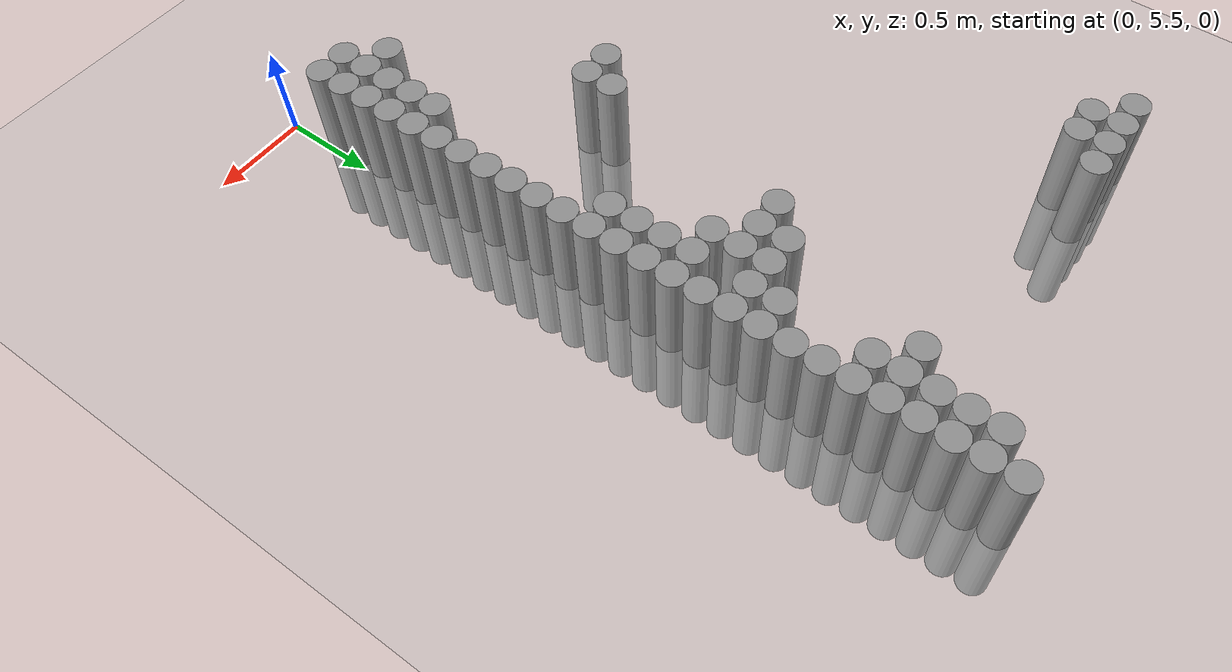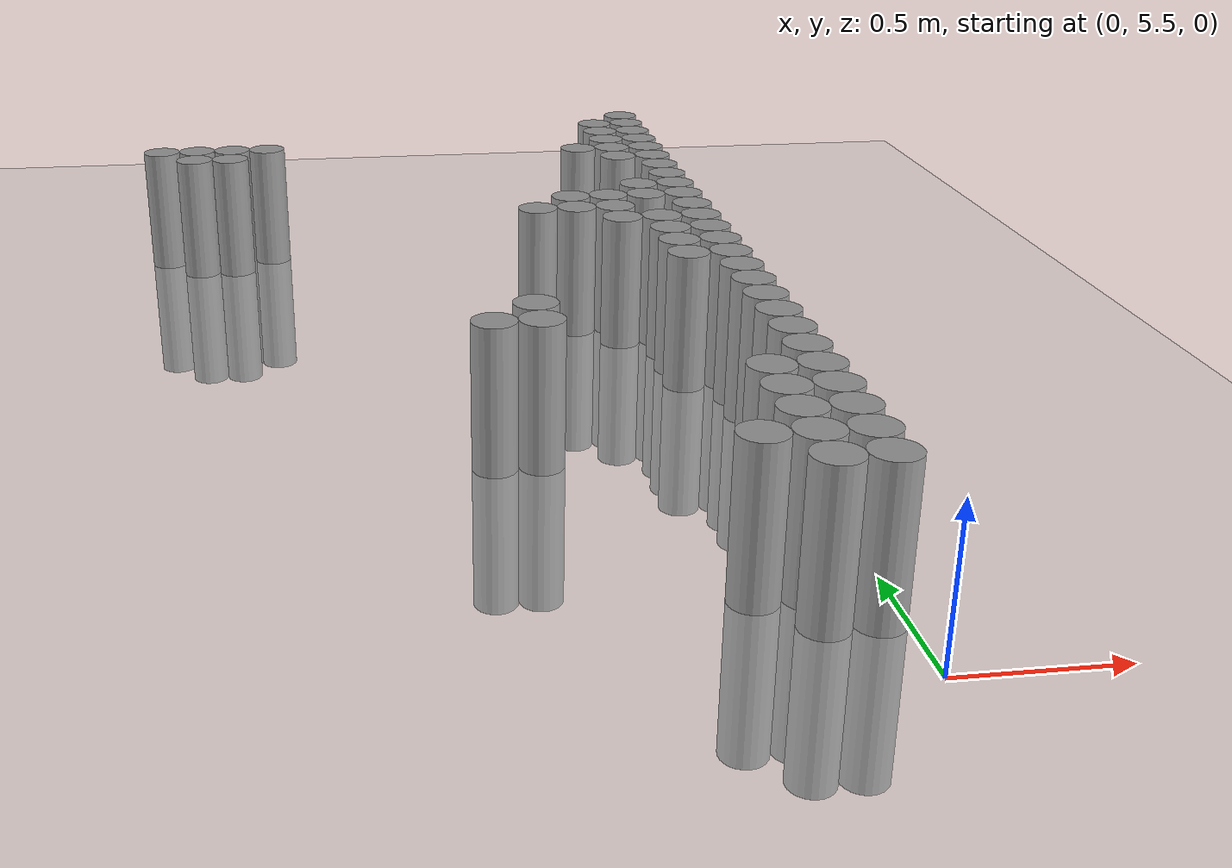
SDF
<sdf version="1.6">
 <world name="default">
  <model name="ground_plane">
   <static>1</static>
   <link name="link">
    <collision name="collision">
     <geometry><plane><normal>0 0 1</normal><size>100 100</size></plane></geometry>
     <surface><friction><ode><mu>1000</mu><mu2>500</mu2></ode></friction></surface>
    </collision>
    <visual name="visual">
     <cast_shadows>0</cast_shadows>
     <geometry><plane><normal>0 0 1</normal><size>100 100</size></plane></geometry>
     <material>
      <script><uri>file://media/materials/scripts/gazebo.material</uri><name>Gazebo/Grey</name></script>
     </material>
    </visual>
   </link>
  </model>
  <model name="unit_cylinder_173">
   <pose>-2.175000 9.075000 0.000000 0.000000 0.000000 0.000000</pose>
   <link name="link">
    <inertial>
     <mass>1</mass>
     <inertia><ixx>0.145833</ixx><ixy>0</ixy><ixz>0</ixz><iyy>0.145833</iyy><iyz>0</iyz><izz>0.125</izz></inertia>
    </inertial>
    <collision name="collision">
     <geometry><cylinder><radius>0.075000</radius><length>1</length></cylinder></geometry>
    </collision>
    <visual name="visual">
     <geometry><cylinder><radius>0.075000</radius><length>1</length></cylinder></geometry>
     <material>
      <script><name>Gazebo/Grey</name><uri>file://media/materials/scripts/gazebo.material</uri></script>
     </material>
    </visual>
   </link>
  </model>
  <model name="unit_cylinder_174">
   <pose>-2.025000 8.925000 0.000000 0.000000 0.000000 0.000000</pose>
   <link name="link">
    <inertial>
     <mass>1</mass>
     <inertia><ixx>0.145833</ixx><ixy>0</ixy><ixz>0</ixz><iyy>0.145833</iyy><iyz>0</iyz><izz>0.125</izz></inertia>
    </inertial>
    <collision name="collision">
     <geometry><cylinder><radius>0.075000</radius><length>1</length></cylinder></geometry>
    </collision>
    <visual name="visual">
     <geometry><cylinder><radius>0.075000</radius><length>1</length></cylinder></geometry>
     <material>
      <script><name>Gazebo/Grey</name><uri>file://media/materials/scripts/gazebo.material</uri></script>
     </material>
    </visual>
   </link>
  </model>
  <model name="unit_cylinder_175">
   <pose>-2.025000 9.075000 0.000000 0.000000 0.000000 0.000000</pose>
   <link name="link">
    <inertial>
     <mass>1</mass>
     <inertia><ixx>0.145833</ixx><ixy>0</ixy><ixz>0</ixz><iyy>0.145833</iyy><iyz>0</iyz><izz>0.125</izz></inertia>
    </inertial>
    <collision name="collision">
     <geometry><cylinder><radius>0.075000</radius><length>1</length></cylinder></geometry>
    </collision>
    <visual name="visual">
     <geometry><cylinder><radius>0.075000</radius><length>1</length></cylinder></geometry>
     <material>
      <script><name>Gazebo/Grey</name><uri>file://media/materials/scripts/gazebo.material</uri></script>
     </material>
    </visual>
   </link>
  </model>
  <model name="unit_cylinder_176">
   <pose>-1.875000 8.925000 0.000000 0.000000 0.000000 0.000000</pose>
   <link name="link">
    <inertial>
     <mass>1</mass>
     <inertia><ixx>0.145833</ixx><ixy>0</ixy><ixz>0</ixz><iyy>0.145833</iyy><iyz>0</iyz><izz>0.125</izz></inertia>
    </inertial>
    <collision name="collision">
     <geometry><cylinder><radius>0.075000</radius><length>1</length></cylinder></geometry>
    </collision>
    <visual name="visual">
     <geometry><cylinder><radius>0.075000</radius><length>1</length></cylinder></geometry>
     <material>
      <script><name>Gazebo/Grey</name><uri>file://media/materials/scripts/gazebo.material</uri></script>
     </material>
    </visual>
   </link>
  </model>
  <model name="unit_cylinder_177">
   <pose>-1.875000 9.075000 0.000000 0.000000 0.000000 0.000000</pose>
   <link name="link">
    <inertial>
     <mass>1</mass>
     <inertia><ixx>0.145833</ixx><ixy>0</ixy><ixz>0</ixz><iyy>0.145833</iyy><iyz>0</iyz><izz>0.125</izz></inertia>
    </inertial>
    <collision name="collision">
     <geometry><cylinder><radius>0.075000</radius><length>1</length></cylinder></geometry>
    </collision>
    <visual name="visual">
     <geometry><cylinder><radius>0.075000</radius><length>1</length></cylinder></geometry>
     <material>
      <script><name>Gazebo/Grey</name><uri>file://media/materials/scripts/gazebo.material</uri></script>
     </material>
    </visual>
   </link>
  </model>
  <model name="unit_cylinder_178">
   <pose>-1.725000 9.075000 0.000000 0.000000 0.000000 0.000000</pose>
   <link name="link">
    <inertial>
     <mass>1</mass>
     <inertia><ixx>0.145833</ixx><ixy>0</ixy><ixz>0</ixz><iyy>0.145833</iyy><iyz>0</iyz><izz>0.125</izz></inertia>
    </inertial>
    <collision name="collision">
     <geometry><cylinder><radius>0.075000</radius><length>1</length></cylinder></geometry>
    </collision>
    <visual name="visual">
     <geometry><cylinder><radius>0.075000</radius><length>1</length></cylinder></geometry>
     <material>
      <script><name>Gazebo/Grey</name><uri>file://media/materials/scripts/gazebo.material</uri></script>
     </material>
    </visual>
   </link>
  </model>
  <model name="unit_cylinder_179">
   <pose>-0.975000 6.825000 0.000000 0.000000 0.000000 0.000000</pose>
   <link name="link">
    <inertial>
     <mass>1</mass>
     <inertia><ixx>0.145833</ixx><ixy>0</ixy><ixz>0</ixz><iyy>0.145833</iyy><iyz>0</iyz><izz>0.125</izz></inertia>
    </inertial>
    <collision name="collision">
     <geometry><cylinder><radius>0.075000</radius><length>1</length></cylinder></geometry>
    </collision>
    <visual name="visual">
     <geometry><cylinder><radius>0.075000</radius><length>1</length></cylinder></geometry>
     <material>
      <script><name>Gazebo/Grey</name><uri>file://media/materials/scripts/gazebo.material</uri></script>
     </material>
    </visual>
   </link>
  </model>
  <model name="unit_cylinder_180">
   <pose>-0.825000 6.825000 0.000000 0.000000 0.000000 0.000000</pose>
   <link name="link">
    <inertial>
     <mass>1</mass>
     <inertia><ixx>0.145833</ixx><ixy>0</ixy><ixz>0</ixz><iyy>0.145833</iyy><iyz>0</iyz><izz>0.125</izz></inertia>
    </inertial>
    <collision name="collision">
     <geometry><cylinder><radius>0.075000</radius><length>1</length></cylinder></geometry>
    </collision>
    <visual name="visual">
     <geometry><cylinder><radius>0.075000</radius><length>1</length></cylinder></geometry>
     <material>
      <script><name>Gazebo/Grey</name><uri>file://media/materials/scripts/gazebo.material</uri></script>
     </material>
    </visual>
   </link>
  </model>
  <model name="unit_cylinder_181">
   <pose>-0.825000 6.975000 0.000000 0.000000 0.000000 0.000000</pose>
   <link name="link">
    <inertial>
     <mass>1</mass>
     <inertia><ixx>0.145833</ixx><ixy>0</ixy><ixz>0</ixz><iyy>0.145833</iyy><iyz>0</iyz><izz>0.125</izz></inertia>
    </inertial>
    <collision name="collision">
     <geometry><cylinder><radius>0.075000</radius><length>1</length></cylinder></geometry>
    </collision>
    <visual name="visual">
     <geometry><cylinder><radius>0.075000</radius><length>1</length></cylinder></geometry>
     <material>
      <script><name>Gazebo/Grey</name><uri>file://media/materials/scripts/gazebo.material</uri></script>
     </material>
    </visual>
   </link>
  </model>
  <model name="unit_cylinder_182">
   <pose>-0.675000 8.025000 0.000000 0.000000 0.000000 0.000000</pose>
   <link name="link">
    <inertial>
     <mass>1</mass>
     <inertia><ixx>0.145833</ixx><ixy>0</ixy><ixz>0</ixz><iyy>0.145833</iyy><iyz>0</iyz><izz>0.125</izz></inertia>
    </inertial>
    <collision name="collision">
     <geometry><cylinder><radius>0.075000</radius><length>1</length></cylinder></geometry>
    </collision>
    <visual name="visual">
     <geometry><cylinder><radius>0.075000</radius><length>1</length></cylinder></geometry>
     <material>
      <script><name>Gazebo/Grey</name><uri>file://media/materials/scripts/gazebo.material</uri></script>
     </material>
    </visual>
   </link>
  </model>
  <model name="unit_cylinder_183">
   <pose>-0.525000 8.025000 0.000000 0.000000 0.000000 0.000000</pose>
   <link name="link">
    <inertial>
     <mass>1</mass>
     <inertia><ixx>0.145833</ixx><ixy>0</ixy><ixz>0</ixz><iyy>0.145833</iyy><iyz>0</iyz><izz>0.125</izz></inertia>
    </inertial>
    <collision name="collision">
     <geometry><cylinder><radius>0.075000</radius><length>1</length></cylinder></geometry>
    </collision>
    <visual name="visual">
     <geometry><cylinder><radius>0.075000</radius><length>1</length></cylinder></geometry>
     <material>
      <script><name>Gazebo/Grey</name><uri>file://media/materials/scripts/gazebo.material</uri></script>
     </material>
    </visual>
   </link>
  </model>
  <model name="unit_cylinder_184">
   <pose>-0.525000 8.175000 0.000000 0.000000 0.000000 0.000000</pose>
   <link name="link">
    <inertial>
     <mass>1</mass>
     <inertia><ixx>0.145833</ixx><ixy>0</ixy><ixz>0</ixz><iyy>0.145833</iyy><iyz>0</iyz><izz>0.125</izz></inertia>
    </inertial>
    <collision name="collision">
     <geometry><cylinder><radius>0.075000</radius><length>1</length></cylinder></geometry>
    </collision>
    <visual name="visual">
     <geometry><cylinder><radius>0.075000</radius><length>1</length></cylinder></geometry>
     <material>
      <script><name>Gazebo/Grey</name><uri>file://media/materials/scripts/gazebo.material</uri></script>
     </material>
    </visual>
   </link>
  </model>
  <model name="unit_cylinder_185">
   <pose>-0.375000 5.925000 0.000000 0.000000 0.000000 0.000000</pose>
   <link name="link">
    <inertial>
     <mass>1</mass>
     <inertia><ixx>0.145833</ixx><ixy>0</ixy><ixz>0</ixz><iyy>0.145833</iyy><iyz>0</iyz><izz>0.125</izz></inertia>
    </inertial>
    <collision name="collision">
     <geometry><cylinder><radius>0.075000</radius><length>1</length></cylinder></geometry>
    </collision>
    <visual name="visual">
     <geometry><cylinder><radius>0.075000</radius><length>1</length></cylinder></geometry>
     <material>
      <script><name>Gazebo/Grey</name><uri>file://media/materials/scripts/gazebo.material</uri></script>
     </material>
    </visual>
   </link>
  </model>
  <model name="unit_cylinder_186">
   <pose>-0.375000 7.875000 0.000000 0.000000 0.000000 0.000000</pose>
   <link name="link">
    <inertial>
     <mass>1</mass>
     <inertia><ixx>0.145833</ixx><ixy>0</ixy><ixz>0</ixz><iyy>0.145833</iyy><iyz>0</iyz><izz>0.125</izz></inertia>
    </inertial>
    <collision name="collision">
     <geometry><cylinder><radius>0.075000</radius><length>1</length></cylinder></geometry>
    </collision>
    <visual name="visual">
     <geometry><cylinder><radius>0.075000</radius><length>1</length></cylinder></geometry>
     <material>
      <script><name>Gazebo/Grey</name><uri>file://media/materials/scripts/gazebo.material</uri></script>
     </material>
    </visual>
   </link>
  </model>
  <model name="unit_cylinder_187">
   <pose>-0.375000 8.025000 0.000000 0.000000 0.000000 0.000000</pose>
   <link name="link">
    <inertial>
     <mass>1</mass>
     <inertia><ixx>0.145833</ixx><ixy>0</ixy><ixz>0</ixz><iyy>0.145833</iyy><iyz>0</iyz><izz>0.125</izz></inertia>
    </inertial>
    <collision name="collision">
     <geometry><cylinder><radius>0.075000</radius><length>1</length></cylinder></geometry>
    </collision>
    <visual name="visual">
     <geometry><cylinder><radius>0.075000</radius><length>1</length></cylinder></geometry>
     <material>
      <script><name>Gazebo/Grey</name><uri>file://media/materials/scripts/gazebo.material</uri></script>
     </material>
    </visual>
   </link>
  </model>
  <model name="unit_cylinder_188">
   <pose>-0.375000 8.175000 0.000000 0.000000 0.000000 0.000000</pose>
   <link name="link">
    <inertial>
     <mass>1</mass>
     <inertia><ixx>0.145833</ixx><ixy>0</ixy><ixz>0</ixz><iyy>0.145833</iyy><iyz>0</iyz><izz>0.125</izz></inertia>
    </inertial>
    <collision name="collision">
     <geometry><cylinder><radius>0.075000</radius><length>1</length></cylinder></geometry>
    </collision>
    <visual name="visual">
     <geometry><cylinder><radius>0.075000</radius><length>1</length></cylinder></geometry>
     <material>
      <script><name>Gazebo/Grey</name><uri>file://media/materials/scripts/gazebo.material</uri></script>
     </material>
    </visual>
   </link>
  </model>
  <model name="unit_cylinder_189">
   <pose>-0.375000 8.925000 0.000000 0.000000 0.000000 0.000000</pose>
   <link name="link">
    <inertial>
     <mass>1</mass>
     <inertia><ixx>0.145833</ixx><ixy>0</ixy><ixz>0</ixz><iyy>0.145833</iyy><iyz>0</iyz><izz>0.125</izz></inertia>
    </inertial>
    <collision name="collision">
     <geometry><cylinder><radius>0.075000</radius><length>1</length></cylinder></geometry>
    </collision>
    <visual name="visual">
     <geometry><cylinder><radius>0.075000</radius><length>1</length></cylinder></geometry>
     <material>
      <script><name>Gazebo/Grey</name><uri>file://media/materials/scripts/gazebo.material</uri></script>
     </material>
    </visual>
   </link>
  </model>
  <model name="unit_cylinder_191">
   <pose>-0.225000 5.775000 0.000000 0.000000 0.000000 0.000000</pose>
   <link name="link">
    <inertial>
     <mass>1</mass>
     <inertia><ixx>0.145833</ixx><ixy>0</ixy><ixz>0</ixz><iyy>0.145833</iyy><iyz>0</iyz><izz>0.125</izz></inertia>
    </inertial>
    <collision name="collision">
     <geometry><cylinder><radius>0.075000</radius><length>1</length></cylinder></geometry>
    </collision>
    <visual name="visual">
     <geometry><cylinder><radius>0.075000</radius><length>1</length></cylinder></geometry>
     <material>
      <script><name>Gazebo/Grey</name><uri>file://media/materials/scripts/gazebo.material</uri></script>
     </material>
    </visual>
   </link>
  </model>
  <model name="unit_cylinder_192">
   <pose>-0.225000 5.925000 0.000000 0.000000 0.000000 0.000000</pose>
   <link name="link">
    <inertial>
     <mass>1</mass>
     <inertia><ixx>0.145833</ixx><ixy>0</ixy><ixz>0</ixz><iyy>0.145833</iyy><iyz>0</iyz><izz>0.125</izz></inertia>
    </inertial>
    <collision name="collision">
     <geometry><cylinder><radius>0.075000</radius><length>1</length></cylinder></geometry>
    </collision>
    <visual name="visual">
     <geometry><cylinder><radius>0.075000</radius><length>1</length></cylinder></geometry>
     <material>
      <script><name>Gazebo/Grey</name><uri>file://media/materials/scripts/gazebo.material</uri></script>
     </material>
    </visual>
   </link>
  </model>
  <model name="unit_cylinder_193">
   <pose>-0.225000 6.075000 0.000000 0.000000 0.000000 0.000000</pose>
   <link name="link">
    <inertial>
     <mass>1</mass>
     <inertia><ixx>0.145833</ixx><ixy>0</ixy><ixz>0</ixz><iyy>0.145833</iyy><iyz>0</iyz><izz>0.125</izz></inertia>
    </inertial>
    <collision name="collision">
     <geometry><cylinder><radius>0.075000</radius><length>1</length></cylinder></geometry>
    </collision>
    <visual name="visual">
     <geometry><cylinder><radius>0.075000</radius><length>1</length></cylinder></geometry>
     <material>
      <script><name>Gazebo/Grey</name><uri>file://media/materials/scripts/gazebo.material</uri></script>
     </material>
    </visual>
   </link>
  </model>
  <model name="unit_cylinder_194">
   <pose>-0.225000 6.225000 0.000000 0.000000 0.000000 0.000000</pose>
   <link name="link">
    <inertial>
     <mass>1</mass>
     <inertia><ixx>0.145833</ixx><ixy>0</ixy><ixz>0</ixz><iyy>0.145833</iyy><iyz>0</iyz><izz>0.125</izz></inertia>
    </inertial>
    <collision name="collision">
     <geometry><cylinder><radius>0.075000</radius><length>1</length></cylinder></geometry>
    </collision>
    <visual name="visual">
     <geometry><cylinder><radius>0.075000</radius><length>1</length></cylinder></geometry>
     <material>
      <script><name>Gazebo/Grey</name><uri>file://media/materials/scripts/gazebo.material</uri></script>
     </material>
    </visual>
   </link>
  </model>
  <model name="unit_cylinder_195">
   <pose>-0.225000 6.375000 0.000000 0.000000 0.000000 0.000000</pose>
   <link name="link">
    <inertial>
     <mass>1</mass>
     <inertia><ixx>0.145833</ixx><ixy>0</ixy><ixz>0</ixz><iyy>0.145833</iyy><iyz>0</iyz><izz>0.125</izz></inertia>
    </inertial>
    <collision name="collision">
     <geometry><cylinder><radius>0.075000</radius><length>1</length></cylinder></geometry>
    </collision>
    <visual name="visual">
     <geometry><cylinder><radius>0.075000</radius><length>1</length></cylinder></geometry>
     <material>
      <script><name>Gazebo/Grey</name><uri>file://media/materials/scripts/gazebo.material</uri></script>
     </material>
    </visual>
   </link>
  </model>
  <model name="unit_cylinder_196">
   <pose>-0.225000 7.425000 0.000000 0.000000 0.000000 0.000000</pose>
   <link name="link">
    <inertial>
     <mass>1</mass>
     <inertia><ixx>0.145833</ixx><ixy>0</ixy><ixz>0</ixz><iyy>0.145833</iyy><iyz>0</iyz><izz>0.125</izz></inertia>
    </inertial>
    <collision name="collision">
     <geometry><cylinder><radius>0.075000</radius><length>1</length></cylinder></geometry>
    </collision>
    <visual name="visual">
     <geometry><cylinder><radius>0.075000</radius><length>1</length></cylinder></geometry>
     <material>
      <script><name>Gazebo/Grey</name><uri>file://media/materials/scripts/gazebo.material</uri></script>
     </material>
    </visual>
   </link>
  </model>
  <model name="unit_cylinder_197">
   <pose>-0.225000 7.575000 0.000000 0.000000 0.000000 0.000000</pose>
   <link name="link">
    <inertial>
     <mass>1</mass>
     <inertia><ixx>0.145833</ixx><ixy>0</ixy><ixz>0</ixz><iyy>0.145833</iyy><iyz>0</iyz><izz>0.125</izz></inertia>
    </inertial>
    <collision name="collision">
     <geometry><cylinder><radius>0.075000</radius><length>1</length></cylinder></geometry>
    </collision>
    <visual name="visual">
     <geometry><cylinder><radius>0.075000</radius><length>1</length></cylinder></geometry>
     <material>
      <script><name>Gazebo/Grey</name><uri>file://media/materials/scripts/gazebo.material</uri></script>
     </material>
    </visual>
   </link>
  </model>
  <model name="unit_cylinder_198">
   <pose>-0.225000 7.725000 0.000000 0.000000 0.000000 0.000000</pose>
   <link name="link">
    <inertial>
     <mass>1</mass>
     <inertia><ixx>0.145833</ixx><ixy>0</ixy><ixz>0</ixz><iyy>0.145833</iyy><iyz>0</iyz><izz>0.125</izz></inertia>
    </inertial>
    <collision name="collision">
     <geometry><cylinder><radius>0.075000</radius><length>1</length></cylinder></geometry>
    </collision>
    <visual name="visual">
     <geometry><cylinder><radius>0.075000</radius><length>1</length></cylinder></geometry>
     <material>
      <script><name>Gazebo/Grey</name><uri>file://media/materials/scripts/gazebo.material</uri></script>
     </material>
    </visual>
   </link>
  </model>
  <model name="unit_cylinder_199">
   <pose>-0.225000 7.875000 0.000000 0.000000 0.000000 0.000000</pose>
   <link name="link">
    <inertial>
     <mass>1</mass>
     <inertia><ixx>0.145833</ixx><ixy>0</ixy><ixz>0</ixz><iyy>0.145833</iyy><iyz>0</iyz><izz>0.125</izz></inertia>
    </inertial>
    <collision name="collision">
     <geometry><cylinder><radius>0.075000</radius><length>1</length></cylinder></geometry>
    </collision>
    <visual name="visual">
     <geometry><cylinder><radius>0.075000</radius><length>1</length></cylinder></geometry>
     <material>
      <script><name>Gazebo/Grey</name><uri>file://media/materials/scripts/gazebo.material</uri></script>
     </material>
    </visual>
   </link>
  </model>
  <model name="unit_cylinder_200">
   <pose>-0.225000 8.175000 0.000000 0.000000 0.000000 0.000000</pose>
   <link name="link">
    <inertial>
     <mass>1</mass>
     <inertia><ixx>0.145833</ixx><ixy>0</ixy><ixz>0</ixz><iyy>0.145833</iyy><iyz>0</iyz><izz>0.125</izz></inertia>
    </inertial>
    <collision name="collision">
     <geometry><cylinder><radius>0.075000</radius><length>1</length></cylinder></geometry>
    </collision>
    <visual name="visual">
     <geometry><cylinder><radius>0.075000</radius><length>1</length></cylinder></geometry>
     <material>
      <script><name>Gazebo/Grey</name><uri>file://media/materials/scripts/gazebo.material</uri></script>
     </material>
    </visual>
   </link>
  </model>
  <model name="unit_cylinder_201">
   <pose>-0.225000 8.325000 0.000000 0.000000 0.000000 0.000000</pose>
   <link name="link">
    <inertial>
     <mass>1</mass>
     <inertia><ixx>0.145833</ixx><ixy>0</ixy><ixz>0</ixz><iyy>0.145833</iyy><iyz>0</iyz><izz>0.125</izz></inertia>
    </inertial>
    <collision name="collision">
     <geometry><cylinder><radius>0.075000</radius><length>1</length></cylinder></geometry>
    </collision>
    <visual name="visual">
     <geometry><cylinder><radius>0.075000</radius><length>1</length></cylinder></geometry>
     <material>
      <script><name>Gazebo/Grey</name><uri>file://media/materials/scripts/gazebo.material</uri></script>
     </material>
    </visual>
   </link>
  </model>
  <model name="unit_cylinder_202">
   <pose>-0.225000 8.775000 0.000000 0.000000 0.000000 0.000000</pose>
   <link name="link">
    <inertial>
     <mass>1</mass>
     <inertia><ixx>0.145833</ixx><ixy>0</ixy><ixz>0</ixz><iyy>0.145833</iyy><iyz>0</iyz><izz>0.125</izz></inertia>
    </inertial>
    <collision name="collision">
     <geometry><cylinder><radius>0.075000</radius><length>1</length></cylinder></geometry>
    </collision>
    <visual name="visual">
     <geometry><cylinder><radius>0.075000</radius><length>1</length></cylinder></geometry>
     <material>
      <script><name>Gazebo/Grey</name><uri>file://media/materials/scripts/gazebo.material</uri></script>
     </material>
    </visual>
   </link>
  </model>
  <model name="unit_cylinder_203">
   <pose>-0.225000 8.925000 0.000000 0.000000 0.000000 0.000000</pose>
   <link name="link">
    <inertial>
     <mass>1</mass>
     <inertia><ixx>0.145833</ixx><ixy>0</ixy><ixz>0</ixz><iyy>0.145833</iyy><iyz>0</iyz><izz>0.125</izz></inertia>
    </inertial>
    <collision name="collision">
     <geometry><cylinder><radius>0.075000</radius><length>1</length></cylinder></geometry>
    </collision>
    <visual name="visual">
     <geometry><cylinder><radius>0.075000</radius><length>1</length></cylinder></geometry>
     <material>
      <script><name>Gazebo/Grey</name><uri>file://media/materials/scripts/gazebo.material</uri></script>
     </material>
    </visual>
   </link>
  </model>
  <model name="unit_cylinder_204">
   <pose>-0.225000 9.075000 0.000000 0.000000 0.000000 0.000000</pose>
   <link name="link">
    <inertial>
     <mass>1</mass>
     <inertia><ixx>0.145833</ixx><ixy>0</ixy><ixz>0</ixz><iyy>0.145833</iyy><iyz>0</iyz><izz>0.125</izz></inertia>
    </inertial>
    <collision name="collision">
     <geometry><cylinder><radius>0.075000</radius><length>1</length></cylinder></geometry>
    </collision>
    <visual name="visual">
     <geometry><cylinder><radius>0.075000</radius><length>1</length></cylinder></geometry>
     <material>
      <script><name>Gazebo/Grey</name><uri>file://media/materials/scripts/gazebo.material</uri></script>
     </material>
    </visual>
   </link>
  </model>
  <model name="unit_cylinder_205">
   <pose>-0.225000 9.225000 0.000000 0.000000 0.000000 0.000000</pose>
   <link name="link">
    <inertial>
     <mass>1</mass>
     <inertia><ixx>0.145833</ixx><ixy>0</ixy><ixz>0</ixz><iyy>0.145833</iyy><iyz>0</iyz><izz>0.125</izz></inertia>
    </inertial>
    <collision name="collision">
     <geometry><cylinder><radius>0.075000</radius><length>1</length></cylinder></geometry>
    </collision>
    <visual name="visual">
     <geometry><cylinder><radius>0.075000</radius><length>1</length></cylinder></geometry>
     <material>
      <script><name>Gazebo/Grey</name><uri>file://media/materials/scripts/gazebo.material</uri></script>
     </material>
    </visual>
   </link>
  </model>
  <model name="unit_cylinder_206">
   <pose>-0.225000 9.375000 0.000000 0.000000 0.000000 0.000000</pose>
   <link name="link">
    <inertial>
     <mass>1</mass>
     <inertia><ixx>0.145833</ixx><ixy>0</ixy><ixz>0</ixz><iyy>0.145833</iyy><iyz>0</iyz><izz>0.125</izz></inertia>
    </inertial>
    <collision name="collision">
     <geometry><cylinder><radius>0.075000</radius><length>1</length></cylinder></geometry>
    </collision>
    <visual name="visual">
     <geometry><cylinder><radius>0.075000</radius><length>1</length></cylinder></geometry>
     <material>
      <script><name>Gazebo/Grey</name><uri>file://media/materials/scripts/gazebo.material</uri></script>
     </material>
    </visual>
   </link>
  </model>
  <model name="unit_cylinder_211">
   <pose>-0.075000 5.775000 0.000000 0.000000 0.000000 0.000000</pose>
   <link name="link">
    <inertial>
     <mass>1</mass>
     <inertia><ixx>0.145833</ixx><ixy>0</ixy><ixz>0</ixz><iyy>0.145833</iyy><iyz>0</iyz><izz>0.125</izz></inertia>
    </inertial>
    <collision name="collision">
     <geometry><cylinder><radius>0.075000</radius><length>1</length></cylinder></geometry>
    </collision>
    <visual name="visual">
     <geometry><cylinder><radius>0.075000</radius><length>1</length></cylinder></geometry>
     <material>
      <script><name>Gazebo/Grey</name><uri>file://media/materials/scripts/gazebo.material</uri></script>
     </material>
    </visual>
   </link>
  </model>
  <model name="unit_cylinder_212">
   <pose>-0.075000 5.925000 0.000000 0.000000 0.000000 0.000000</pose>
   <link name="link">
    <inertial>
     <mass>1</mass>
     <inertia><ixx>0.145833</ixx><ixy>0</ixy><ixz>0</ixz><iyy>0.145833</iyy><iyz>0</iyz><izz>0.125</izz></inertia>
    </inertial>
    <collision name="collision">
     <geometry><cylinder><radius>0.075000</radius><length>1</length></cylinder></geometry>
    </collision>
    <visual name="visual">
     <geometry><cylinder><radius>0.075000</radius><length>1</length></cylinder></geometry>
     <material>
      <script><name>Gazebo/Grey</name><uri>file://media/materials/scripts/gazebo.material</uri></script>
     </material>
    </visual>
   </link>
  </model>
  <model name="unit_cylinder_213">
   <pose>-0.075000 6.075000 0.000000 0.000000 0.000000 0.000000</pose>
   <link name="link">
    <inertial>
     <mass>1</mass>
     <inertia><ixx>0.145833</ixx><ixy>0</ixy><ixz>0</ixz><iyy>0.145833</iyy><iyz>0</iyz><izz>0.125</izz></inertia>
    </inertial>
    <collision name="collision">
     <geometry><cylinder><radius>0.075000</radius><length>1</length></cylinder></geometry>
    </collision>
    <visual name="visual">
     <geometry><cylinder><radius>0.075000</radius><length>1</length></cylinder></geometry>
     <material>
      <script><name>Gazebo/Grey</name><uri>file://media/materials/scripts/gazebo.material</uri></script>
     </material>
    </visual>
   </link>
  </model>
  <model name="unit_cylinder_214">
   <pose>-0.075000 6.225000 0.000000 0.000000 0.000000 0.000000</pose>
   <link name="link">
    <inertial>
     <mass>1</mass>
     <inertia><ixx>0.145833</ixx><ixy>0</ixy><ixz>0</ixz><iyy>0.145833</iyy><iyz>0</iyz><izz>0.125</izz></inertia>
    </inertial>
    <collision name="collision">
     <geometry><cylinder><radius>0.075000</radius><length>1</length></cylinder></geometry>
    </collision>
    <visual name="visual">
     <geometry><cylinder><radius>0.075000</radius><length>1</length></cylinder></geometry>
     <material>
      <script><name>Gazebo/Grey</name><uri>file://media/materials/scripts/gazebo.material</uri></script>
     </material>
    </visual>
   </link>
  </model>
  <model name="unit_cylinder_215">
   <pose>-0.075000 6.375000 0.000000 0.000000 0.000000 0.000000</pose>
   <link name="link">
    <inertial>
     <mass>1</mass>
     <inertia><ixx>0.145833</ixx><ixy>0</ixy><ixz>0</ixz><iyy>0.145833</iyy><iyz>0</iyz><izz>0.125</izz></inertia>
    </inertial>
    <collision name="collision">
     <geometry><cylinder><radius>0.075000</radius><length>1</length></cylinder></geometry>
    </collision>
    <visual name="visual">
     <geometry><cylinder><radius>0.075000</radius><length>1</length></cylinder></geometry>
     <material>
      <script><name>Gazebo/Grey</name><uri>file://media/materials/scripts/gazebo.material</uri></script>
     </material>
    </visual>
   </link>
  </model>
  <model name="unit_cylinder_216">
   <pose>-0.075000 6.525000 0.000000 0.000000 0.000000 0.000000</pose>
   <link name="link">
    <inertial>
     <mass>1</mass>
     <inertia><ixx>0.145833</ixx><ixy>0</ixy><ixz>0</ixz><iyy>0.145833</iyy><iyz>0</iyz><izz>0.125</izz></inertia>
    </inertial>
    <collision name="collision">
     <geometry><cylinder><radius>0.075000</radius><length>1</length></cylinder></geometry>
    </collision>
    <visual name="visual">
     <geometry><cylinder><radius>0.075000</radius><length>1</length></cylinder></geometry>
     <material>
      <script><name>Gazebo/Grey</name><uri>file://media/materials/scripts/gazebo.material</uri></script>
     </material>
    </visual>
   </link>
  </model>
  <model name="unit_cylinder_217">
   <pose>-0.075000 6.675000 0.000000 0.000000 0.000000 0.000000</pose>
   <link name="link">
    <inertial>
     <mass>1</mass>
     <inertia><ixx>0.145833</ixx><ixy>0</ixy><ixz>0</ixz><iyy>0.145833</iyy><iyz>0</iyz><izz>0.125</izz></inertia>
    </inertial>
    <collision name="collision">
     <geometry><cylinder><radius>0.075000</radius><length>1</length></cylinder></geometry>
    </collision>
    <visual name="visual">
     <geometry><cylinder><radius>0.075000</radius><length>1</length></cylinder></geometry>
     <material>
      <script><name>Gazebo/Grey</name><uri>file://media/materials/scripts/gazebo.material</uri></script>
     </material>
    </visual>
   </link>
  </model>
  <model name="unit_cylinder_218">
   <pose>-0.075000 6.825000 0.000000 0.000000 0.000000 0.000000</pose>
   <link name="link">
    <inertial>
     <mass>1</mass>
     <inertia><ixx>0.145833</ixx><ixy>0</ixy><ixz>0</ixz><iyy>0.145833</iyy><iyz>0</iyz><izz>0.125</izz></inertia>
    </inertial>
    <collision name="collision">
     <geometry><cylinder><radius>0.075000</radius><length>1</length></cylinder></geometry>
    </collision>
    <visual name="visual">
     <geometry><cylinder><radius>0.075000</radius><length>1</length></cylinder></geometry>
     <material>
      <script><name>Gazebo/Grey</name><uri>file://media/materials/scripts/gazebo.material</uri></script>
     </material>
    </visual>
   </link>
  </model>
  <model name="unit_cylinder_219">
   <pose>-0.075000 6.975000 0.000000 0.000000 0.000000 0.000000</pose>
   <link name="link">
    <inertial>
     <mass>1</mass>
     <inertia><ixx>0.145833</ixx><ixy>0</ixy><ixz>0</ixz><iyy>0.145833</iyy><iyz>0</iyz><izz>0.125</izz></inertia>
    </inertial>
    <collision name="collision">
     <geometry><cylinder><radius>0.075000</radius><length>1</length></cylinder></geometry>
    </collision>
    <visual name="visual">
     <geometry><cylinder><radius>0.075000</radius><length>1</length></cylinder></geometry>
     <material>
      <script><name>Gazebo/Grey</name><uri>file://media/materials/scripts/gazebo.material</uri></script>
     </material>
    </visual>
   </link>
  </model>
  <model name="unit_cylinder_220">
   <pose>-0.075000 7.125000 0.000000 0.000000 0.000000 0.000000</pose>
   <link name="link">
    <inertial>
     <mass>1</mass>
     <inertia><ixx>0.145833</ixx><ixy>0</ixy><ixz>0</ixz><iyy>0.145833</iyy><iyz>0</iyz><izz>0.125</izz></inertia>
    </inertial>
    <collision name="collision">
     <geometry><cylinder><radius>0.075000</radius><length>1</length></cylinder></geometry>
    </collision>
    <visual name="visual">
     <geometry><cylinder><radius>0.075000</radius><length>1</length></cylinder></geometry>
     <material>
      <script><name>Gazebo/Grey</name><uri>file://media/materials/scripts/gazebo.material</uri></script>
     </material>
    </visual>
   </link>
  </model>
  <model name="unit_cylinder_221">
   <pose>-0.075000 7.275000 0.000000 0.000000 0.000000 0.000000</pose>
   <link name="link">
    <inertial>
     <mass>1</mass>
     <inertia><ixx>0.145833</ixx><ixy>0</ixy><ixz>0</ixz><iyy>0.145833</iyy><iyz>0</iyz><izz>0.125</izz></inertia>
    </inertial>
    <collision name="collision">
     <geometry><cylinder><radius>0.075000</radius><length>1</length></cylinder></geometry>
    </collision>
    <visual name="visual">
     <geometry><cylinder><radius>0.075000</radius><length>1</length></cylinder></geometry>
     <material>
      <script><name>Gazebo/Grey</name><uri>file://media/materials/scripts/gazebo.material</uri></script>
     </material>
    </visual>
   </link>
  </model>
  <model name="unit_cylinder_222">
   <pose>-0.075000 7.425000 0.000000 0.000000 0.000000 0.000000</pose>
   <link name="link">
    <inertial>
     <mass>1</mass>
     <inertia><ixx>0.145833</ixx><ixy>0</ixy><ixz>0</ixz><iyy>0.145833</iyy><iyz>0</iyz><izz>0.125</izz></inertia>
    </inertial>
    <collision name="collision">
     <geometry><cylinder><radius>0.075000</radius><length>1</length></cylinder></geometry>
    </collision>
    <visual name="visual">
     <geometry><cylinder><radius>0.075000</radius><length>1</length></cylinder></geometry>
     <material>
      <script><name>Gazebo/Grey</name><uri>file://media/materials/scripts/gazebo.material</uri></script>
     </material>
    </visual>
   </link>
  </model>
  <model name="unit_cylinder_223">
   <pose>-0.075000 7.575000 0.000000 0.000000 0.000000 0.000000</pose>
   <link name="link">
    <inertial>
     <mass>1</mass>
     <inertia><ixx>0.145833</ixx><ixy>0</ixy><ixz>0</ixz><iyy>0.145833</iyy><iyz>0</iyz><izz>0.125</izz></inertia>
    </inertial>
    <collision name="collision">
     <geometry><cylinder><radius>0.075000</radius><length>1</length></cylinder></geometry>
    </collision>
    <visual name="visual">
     <geometry><cylinder><radius>0.075000</radius><length>1</length></cylinder></geometry>
     <material>
      <script><name>Gazebo/Grey</name><uri>file://media/materials/scripts/gazebo.material</uri></script>
     </material>
    </visual>
   </link>
  </model>
  <model name="unit_cylinder_224">
   <pose>-0.075000 7.725000 0.000000 0.000000 0.000000 0.000000</pose>
   <link name="link">
    <inertial>
     <mass>1</mass>
     <inertia><ixx>0.145833</ixx><ixy>0</ixy><ixz>0</ixz><iyy>0.145833</iyy><iyz>0</iyz><izz>0.125</izz></inertia>
    </inertial>
    <collision name="collision">
     <geometry><cylinder><radius>0.075000</radius><length>1</length></cylinder></geometry>
    </collision>
    <visual name="visual">
     <geometry><cylinder><radius>0.075000</radius><length>1</length></cylinder></geometry>
     <material>
      <script><name>Gazebo/Grey</name><uri>file://media/materials/scripts/gazebo.material</uri></script>
     </material>
    </visual>
   </link>
  </model>
  <model name="unit_cylinder_225">
   <pose>-0.075000 7.875000 0.000000 0.000000 0.000000 0.000000</pose>
   <link name="link">
    <inertial>
     <mass>1</mass>
     <inertia><ixx>0.145833</ixx><ixy>0</ixy><ixz>0</ixz><iyy>0.145833</iyy><iyz>0</iyz><izz>0.125</izz></inertia>
    </inertial>
    <collision name="collision">
     <geometry><cylinder><radius>0.075000</radius><length>1</length></cylinder></geometry>
    </collision>
    <visual name="visual">
     <geometry><cylinder><radius>0.075000</radius><length>1</length></cylinder></geometry>
     <material>
      <script><name>Gazebo/Grey</name><uri>file://media/materials/scripts/gazebo.material</uri></script>
     </material>
    </visual>
   </link>
  </model>
  <model name="unit_cylinder_226">
   <pose>-0.075000 8.025000 0.000000 0.000000 0.000000 0.000000</pose>
   <link name="link">
    <inertial>
     <mass>1</mass>
     <inertia><ixx>0.145833</ixx><ixy>0</ixy><ixz>0</ixz><iyy>0.145833</iyy><iyz>0</iyz><izz>0.125</izz></inertia>
    </inertial>
    <collision name="collision">
     <geometry><cylinder><radius>0.075000</radius><length>1</length></cylinder></geometry>
    </collision>
    <visual name="visual">
     <geometry><cylinder><radius>0.075000</radius><length>1</length></cylinder></geometry>
     <material>
      <script><name>Gazebo/Grey</name><uri>file://media/materials/scripts/gazebo.material</uri></script>
     </material>
    </visual>
   </link>
  </model>
  <model name="unit_cylinder_227">
   <pose>-0.075000 8.175000 0.000000 0.000000 0.000000 0.000000</pose>
   <link name="link">
    <inertial>
     <mass>1</mass>
     <inertia><ixx>0.145833</ixx><ixy>0</ixy><ixz>0</ixz><iyy>0.145833</iyy><iyz>0</iyz><izz>0.125</izz></inertia>
    </inertial>
    <collision name="collision">
     <geometry><cylinder><radius>0.075000</radius><length>1</length></cylinder></geometry>
    </collision>
    <visual name="visual">
     <geometry><cylinder><radius>0.075000</radius><length>1</length></cylinder></geometry>
     <material>
      <script><name>Gazebo/Grey</name><uri>file://media/materials/scripts/gazebo.material</uri></script>
     </material>
    </visual>
   </link>
  </model>
  <model name="unit_cylinder_228">
   <pose>-0.075000 8.325000 0.000000 0.000000 0.000000 0.000000</pose>
   <link name="link">
    <inertial>
     <mass>1</mass>
     <inertia><ixx>0.145833</ixx><ixy>0</ixy><ixz>0</ixz><iyy>0.145833</iyy><iyz>0</iyz><izz>0.125</izz></inertia>
    </inertial>
    <collision name="collision">
     <geometry><cylinder><radius>0.075000</radius><length>1</length></cylinder></geometry>
    </collision>
    <visual name="visual">
     <geometry><cylinder><radius>0.075000</radius><length>1</length></cylinder></geometry>
     <material>
      <script><name>Gazebo/Grey</name><uri>file://media/materials/scripts/gazebo.material</uri></script>
     </material>
    </visual>
   </link>
  </model>
  <model name="unit_cylinder_229">
   <pose>-0.075000 8.475000 0.000000 0.000000 0.000000 0.000000</pose>
   <link name="link">
    <inertial>
     <mass>1</mass>
     <inertia><ixx>0.145833</ixx><ixy>0</ixy><ixz>0</ixz><iyy>0.145833</iyy><iyz>0</iyz><izz>0.125</izz></inertia>
    </inertial>
    <collision name="collision">
     <geometry><cylinder><radius>0.075000</radius><length>1</length></cylinder></geometry>
    </collision>
    <visual name="visual">
     <geometry><cylinder><radius>0.075000</radius><length>1</length></cylinder></geometry>
     <material>
      <script><name>Gazebo/Grey</name><uri>file://media/materials/scripts/gazebo.material</uri></script>
     </material>
    </visual>
   </link>
  </model>
  <model name="unit_cylinder_230">
   <pose>-0.075000 8.625000 0.000000 0.000000 0.000000 0.000000</pose>
   <link name="link">
    <inertial>
     <mass>1</mass>
     <inertia><ixx>0.145833</ixx><ixy>0</ixy><ixz>0</ixz><iyy>0.145833</iyy><iyz>0</iyz><izz>0.125</izz></inertia>
    </inertial>
    <collision name="collision">
     <geometry><cylinder><radius>0.075000</radius><length>1</length></cylinder></geometry>
    </collision>
    <visual name="visual">
     <geometry><cylinder><radius>0.075000</radius><length>1</length></cylinder></geometry>
     <material>
      <script><name>Gazebo/Grey</name><uri>file://media/materials/scripts/gazebo.material</uri></script>
     </material>
    </visual>
   </link>
  </model>
  <model name="unit_cylinder_231">
   <pose>-0.075000 8.775000 0.000000 0.000000 0.000000 0.000000</pose>
   <link name="link">
    <inertial>
     <mass>1</mass>
     <inertia><ixx>0.145833</ixx><ixy>0</ixy><ixz>0</ixz><iyy>0.145833</iyy><iyz>0</iyz><izz>0.125</izz></inertia>
    </inertial>
    <collision name="collision">
     <geometry><cylinder><radius>0.075000</radius><length>1</length></cylinder></geometry>
    </collision>
    <visual name="visual">
     <geometry><cylinder><radius>0.075000</radius><length>1</length></cylinder></geometry>
     <material>
      <script><name>Gazebo/Grey</name><uri>file://media/materials/scripts/gazebo.material</uri></script>
     </material>
    </visual>
   </link>
  </model>
  <model name="unit_cylinder_232">
   <pose>-0.075000 8.925000 0.000000 0.000000 0.000000 0.000000</pose>
   <link name="link">
    <inertial>
     <mass>1</mass>
     <inertia><ixx>0.145833</ixx><ixy>0</ixy><ixz>0</ixz><iyy>0.145833</iyy><iyz>0</iyz><izz>0.125</izz></inertia>
    </inertial>
    <collision name="collision">
     <geometry><cylinder><radius>0.075000</radius><length>1</length></cylinder></geometry>
    </collision>
    <visual name="visual">
     <geometry><cylinder><radius>0.075000</radius><length>1</length></cylinder></geometry>
     <material>
      <script><name>Gazebo/Grey</name><uri>file://media/materials/scripts/gazebo.material</uri></script>
     </material>
    </visual>
   </link>
  </model>
  <model name="unit_cylinder_233">
   <pose>-0.075000 9.075000 0.000000 0.000000 0.000000 0.000000</pose>
   <link name="link">
    <inertial>
     <mass>1</mass>
     <inertia><ixx>0.145833</ixx><ixy>0</ixy><ixz>0</ixz><iyy>0.145833</iyy><iyz>0</iyz><izz>0.125</izz></inertia>
    </inertial>
    <collision name="collision">
     <geometry><cylinder><radius>0.075000</radius><length>1</length></cylinder></geometry>
    </collision>
    <visual name="visual">
     <geometry><cylinder><radius>0.075000</radius><length>1</length></cylinder></geometry>
     <material>
      <script><name>Gazebo/Grey</name><uri>file://media/materials/scripts/gazebo.material</uri></script>
     </material>
    </visual>
   </link>
  </model>
  <model name="unit_cylinder_234">
   <pose>-0.075000 9.225000 0.000000 0.000000 0.000000 0.000000</pose>
   <link name="link">
    <inertial>
     <mass>1</mass>
     <inertia><ixx>0.145833</ixx><ixy>0</ixy><ixz>0</ixz><iyy>0.145833</iyy><iyz>0</iyz><izz>0.125</izz></inertia>
    </inertial>
    <collision name="collision">
     <geometry><cylinder><radius>0.075000</radius><length>1</length></cylinder></geometry>
    </collision>
    <visual name="visual">
     <geometry><cylinder><radius>0.075000</radius><length>1</length></cylinder></geometry>
     <material>
      <script><name>Gazebo/Grey</name><uri>file://media/materials/scripts/gazebo.material</uri></script>
     </material>
    </visual>
   </link>
  </model>
  <model name="unit_cylinder_235">
   <pose>-0.075000 9.375000 0.000000 0.000000 0.000000 0.000000</pose>
   <link name="link">
    <inertial>
     <mass>1</mass>
     <inertia><ixx>0.145833</ixx><ixy>0</ixy><ixz>0</ixz><iyy>0.145833</iyy><iyz>0</iyz><izz>0.125</izz></inertia>
    </inertial>
    <collision name="collision">
     <geometry><cylinder><radius>0.075000</radius><length>1</length></cylinder></geometry>
    </collision>
    <visual name="visual">
     <geometry><cylinder><radius>0.075000</radius><length>1</length></cylinder></geometry>
     <material>
      <script><name>Gazebo/Grey</name><uri>file://media/materials/scripts/gazebo.material</uri></script>
     </material>
    </visual>
   </link>
  </model>
  <model name="unit_cylinder_236">
   <pose>-0.075000 9.525000 0.000000 0.000000 0.000000 0.000000</pose>
   <link name="link">
    <inertial>
     <mass>1</mass>
     <inertia><ixx>0.145833</ixx><ixy>0</ixy><ixz>0</ixz><iyy>0.145833</iyy><iyz>0</iyz><izz>0.125</izz></inertia>
    </inertial>
    <collision name="collision">
     <geometry><cylinder><radius>0.075000</radius><length>1</length></cylinder></geometry>
    </collision>
    <visual name="visual">
     <geometry><cylinder><radius>0.075000</radius><length>1</length></cylinder></geometry>
     <material>
      <script><name>Gazebo/Grey</name><uri>file://media/materials/scripts/gazebo.material</uri></script>
     </material>
    </visual>
   </link>
  </model>
 </world>
</sdf>
